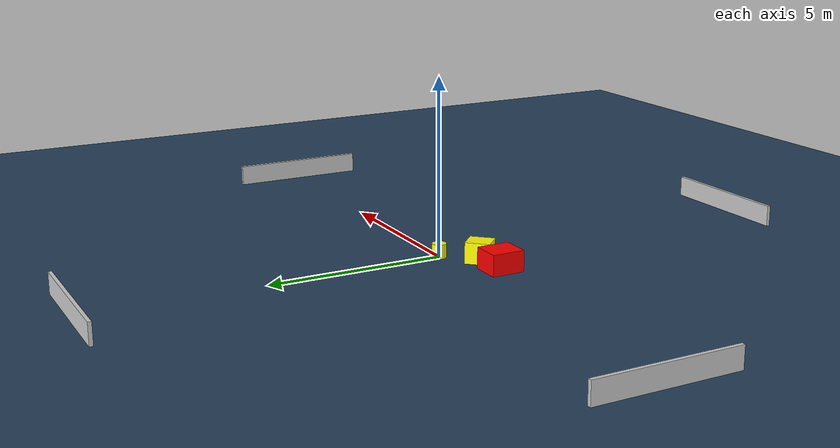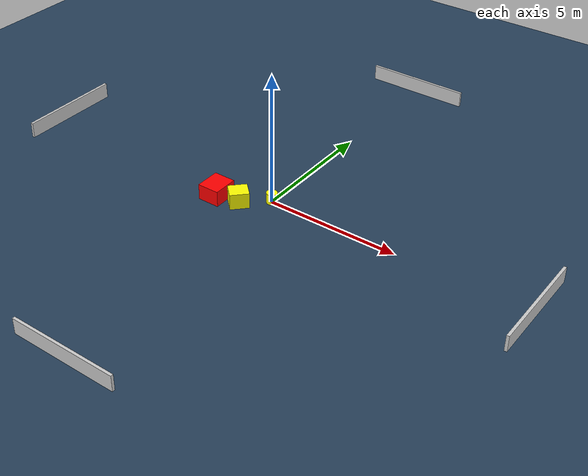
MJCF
<?xml version="1.0" ?>
<mujoco model="generated_environment">
  <option timestep="0.01" integrator="RK4" cone="elliptic"/>
  <default>
    <geom density="1"/>
  </default>
  <asset>
    <texture builtin="gradient" height="3072" name="skybox" rgb1="0.3 0.5 0.7" rgb2="0 0 0" type="skybox" width="512"/>
    <texture builtin="checker" height="300" name="groundplane" rgb1="0.2 0.3 0.4" rgb2="0.1 0.2 0.3" type="2d" width="300"/>
    <material name="groundplane" reflectance="0.2" texrepeat="5 5" texture="groundplane"/>
  </asset>
  <worldbody>
    <light dir="0 0 -1" directional="true" pos="0 0 1.5"/>
    <geom condim="3" friction="0.5 0.005 0.001" material="groundplane" name="floor" pos="0 0 0" size="0 0 0.05" type="plane"/>
    <body name="walls">
      <geom name="wall_1" condim="4" pos="-10.0 0.0 0.3" rgba="0.800000011920929 0.800000011920929 0.800000011920929 1.0" size="0.05 2.0 0.3" type="box"/>
      <geom name="wall_2" condim="4" pos="10.0 0.0 0.3" rgba="0.800000011920929 0.800000011920929 0.800000011920929 1.0" size="0.05 2.0 0.3" type="box"/>
      <geom name="wall_3" condim="4" pos="0.0 -10.0 0.3" rgba="0.800000011920929 0.800000011920929 0.800000011920929 1.0" size="2.0 0.05 0.3" type="box"/>
      <geom name="wall_4" condim="4" pos="0.0 10.0 0.3" rgba="0.800000011920929 0.800000011920929 0.800000011920929 1.0" size="2.0 0.05 0.3" type="box"/>
    </body>
    <body name="robot">
      <joint name="joint_x" type="slide" pos="0 0 0" axis="1 0 0"/>
      <joint name="joint_y" type="slide" pos="0 0 0" axis="0 1 0"/>
      <geom name="robot" type="cylinder" pos="0.0 0.0 0.2" size="0.2 0.2 0.0" mass="5.0" friction="1.0 0.005 0.0001" condim="4" rgba="1.0 1.0 0.0 1.0"/>
    </body>
    <body name="obstacle_1_movable">
      <geom name="obstacle_1_movable" condim="4" pos="-0.8650347160180248 -0.7881959265366733 0.3" euler="0 0 315.94729372541474" friction="0.0 0.005 0.001" rgba="1.0 1.0 0.0 1.0" size="0.31107319092777846 0.3496791545322111 0.3" type="box" mass="0.1"/>
      <joint type="free"/>
    </body>
    <body name="obstacle_2_static">
      <geom name="obstacle_2_static" condim="4" pos="-1.7629710372784895 -0.8969549006355063 0.3" euler="0 0 180.1054194535105" friction="0.0 0.005 0.001" rgba="1.0 0.0 0.0 1.0" size="0.41386946717231515 0.47145689998619883 0.3" type="box"/>
    </body>
  </worldbody>
  <actuator>
    <motor name="actuator_x" joint="joint_x" gear="1" ctrlrange="-1 1"/>
    <motor name="actuator_y" joint="joint_y" gear="1" ctrlrange="-1 1"/>
  </actuator>
</mujoco>
